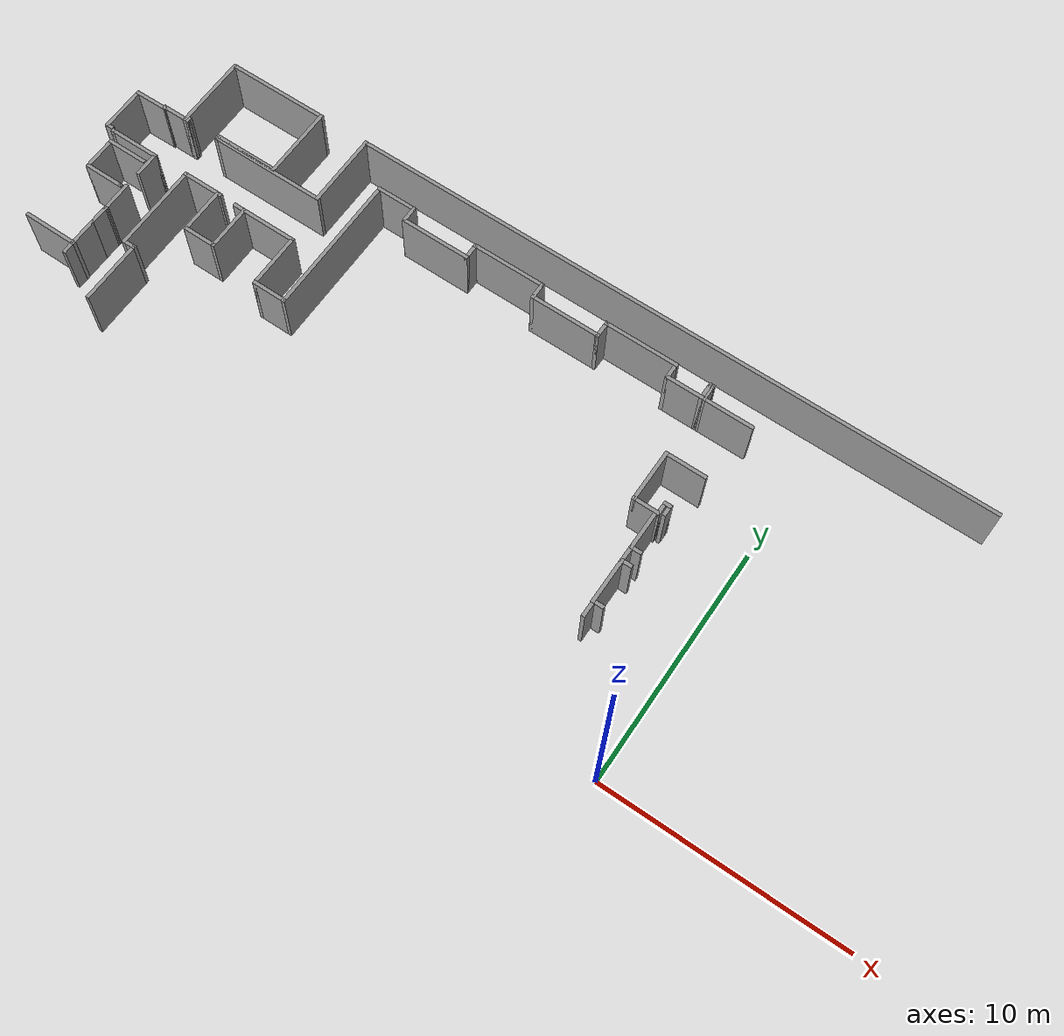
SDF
<sdf version="1.7">
 <model name="NursingHome">
  <pose>-0.88842 0.073115 0 0 -0 0</pose>
  <link name="Wall_100">
   <collision name="Wall_100_Collision">
    <geometry><box><size>27.5 0.15 2.5</size></box></geometry>
    <pose>0 0 1.25 0 -0 0</pose>
   </collision>
   <visual name="Wall_100_Visual">
    <pose>0 0 1.25 0 -0 0</pose>
    <geometry><box><size>27.5 0.15 2.5</size></box></geometry>
    <material>
     <script><uri>file://media/materials/scripts/gazebo.material</uri><name>Gazebo/Grey</name></script>
     <ambient>1 1 1 1</ambient>
    </material>
    <meta><layer>0</layer></meta>
   </visual>
   <pose>-6.18972 15.1854 0 0 -0 3.14159</pose>
  </link>
  <link name="Wall_101">
   <collision name="Wall_101_Collision">
    <geometry><box><size>3.25 0.15 2.5</size></box></geometry>
    <pose>0 0 1.25 0 -0 0</pose>
   </collision>
   <visual name="Wall_101_Visual">
    <pose>0 0 1.25 0 -0 0</pose>
    <geometry><box><size>3.25 0.15 2.5</size></box></geometry>
    <material>
     <script><uri>file://media/materials/scripts/gazebo.material</uri><name>Gazebo/Grey</name></script>
     <ambient>1 1 1 1</ambient>
    </material>
    <meta><layer>0</layer></meta>
   </visual>
   <pose>-19.8647 13.6354 0 0 -0 -1.5708</pose>
  </link>
  <link name="Wall_103">
   <collision name="Wall_103_Collision">
    <geometry><box><size>5 0.15 2.5</size></box></geometry>
    <pose>0 0 1.25 0 -0 0</pose>
   </collision>
   <visual name="Wall_103_Visual">
    <pose>0 0 1.25 0 -0 0</pose>
    <geometry><box><size>5 0.15 2.5</size></box></geometry>
    <material>
     <script><uri>file://media/materials/scripts/gazebo.material</uri><name>Gazebo/Grey</name></script>
     <ambient>1 1 1 1</ambient>
    </material>
    <meta><layer>0</layer></meta>
   </visual>
   <pose>-22.2897 12.0854 0 0 -0 3.14159</pose>
  </link>
  <link name="Wall_105">
   <collision name="Wall_105_Collision">
    <geometry><box><size>0.25 0.15 2.5</size></box></geometry>
    <pose>0 0 1.25 0 -0 0</pose>
   </collision>
   <visual name="Wall_105_Visual">
    <pose>0 0 1.25 0 -0 0</pose>
    <geometry><box><size>0.25 0.15 2.5</size></box></geometry>
    <material>
     <script><uri>file://media/materials/scripts/gazebo.material</uri><name>Gazebo/Grey</name></script>
     <ambient>1 1 1 1</ambient>
    </material>
    <meta><layer>0</layer></meta>
   </visual>
   <pose>-24.7147 12.1354 0 0 -0 1.5708</pose>
  </link>
  <link name="Wall_108">
   <collision name="Wall_108_Collision">
    <geometry><box><size>2.75 0.15 2.5</size></box></geometry>
    <pose>0 0 1.25 0 -0 0</pose>
   </collision>
   <visual name="Wall_108_Visual">
    <pose>0 0 1.25 0 -0 0</pose>
    <geometry><box><size>2.75 0.15 2.5</size></box></geometry>
    <material>
     <script><uri>file://media/materials/scripts/gazebo.material</uri><name>Gazebo/Grey</name></script>
     <ambient>1 1 1 1</ambient>
    </material>
    <meta><layer>0</layer></meta>
   </visual>
   <pose>-23.3314 12.1881 0 0 -0 3.14159</pose>
  </link>
  <link name="Wall_113">
   <collision name="Wall_113_Collision">
    <geometry><box><size>3.15 0.15 2.5</size></box></geometry>
    <pose>0 0 1.25 0 -0 0</pose>
   </collision>
   <visual name="Wall_113_Visual">
    <pose>0 0 1.25 0 -0 0</pose>
    <geometry><box><size>3.15 0.15 2.5</size></box></geometry>
    <material>
     <script><uri>file://media/materials/scripts/gazebo.material</uri><name>Gazebo/Grey</name></script>
     <ambient>1 1 1 1</ambient>
    </material>
    <meta><layer>0</layer></meta>
   </visual>
   <pose>-22.0314 13.6881 0 0 -0 1.5708</pose>
  </link>
  <link name="Wall_115">
   <collision name="Wall_115_Collision">
    <geometry><box><size>4.4 0.15 2.5</size></box></geometry>
    <pose>0 0 1.25 0 -0 0</pose>
   </collision>
   <visual name="Wall_115_Visual">
    <pose>0 0 1.25 0 -0 0</pose>
    <geometry><box><size>4.4 0.15 2.5</size></box></geometry>
    <material>
     <script><uri>file://media/materials/scripts/gazebo.material</uri><name>Gazebo/Grey</name></script>
     <ambient>1 1 1 1</ambient>
    </material>
    <meta><layer>0</layer></meta>
   </visual>
   <pose>-24.1564 15.1881 0 0 -0 3.14159</pose>
  </link>
  <link name="Wall_117">
   <collision name="Wall_117_Collision">
    <geometry><box><size>3.25 0.15 2.5</size></box></geometry>
    <pose>0 0 1.25 0 -0 0</pose>
   </collision>
   <visual name="Wall_117_Visual">
    <pose>0 0 1.25 0 -0 0</pose>
    <geometry><box><size>3.25 0.15 2.5</size></box></geometry>
    <material>
     <script><uri>file://media/materials/scripts/gazebo.material</uri><name>Gazebo/Grey</name></script>
     <ambient>1 1 1 1</ambient>
    </material>
    <meta><layer>0</layer></meta>
   </visual>
   <pose>-26.2814 13.6381 0 0 -0 -1.5708</pose>
  </link>
  <link name="Wall_118">
   <collision name="Wall_118_Collision">
    <geometry><box><size>0.25 0.15 2.5</size></box></geometry>
    <pose>0 0 1.25 0 -0 0</pose>
   </collision>
   <visual name="Wall_118_Visual">
    <pose>0 0 1.25 0 -0 0</pose>
    <geometry><box><size>0.25 0.15 2.5</size></box></geometry>
    <material>
     <script><uri>file://media/materials/scripts/gazebo.material</uri><name>Gazebo/Grey</name></script>
     <ambient>1 1 1 1</ambient>
    </material>
    <meta><layer>0</layer></meta>
   </visual>
   <pose>-26.2314 12.0881 0 0 -0 0</pose>
  </link>
  <link name="Wall_119">
   <collision name="Wall_119_Collision">
    <geometry><box><size>0.25 0.15 2.5</size></box></geometry>
    <pose>0 0 1.25 0 -0 0</pose>
   </collision>
   <visual name="Wall_119_Visual">
    <pose>0 0 1.25 0 -0 0</pose>
    <geometry><box><size>0.25 0.15 2.5</size></box></geometry>
    <material>
     <script><uri>file://media/materials/scripts/gazebo.material</uri><name>Gazebo/Grey</name></script>
     <ambient>1 1 1 1</ambient>
    </material>
    <meta><layer>0</layer></meta>
   </visual>
   <pose>-26.1814 12.1381 0 0 -0 1.5708</pose>
  </link>
  <link name="Wall_121">
   <collision name="Wall_121_Collision">
    <geometry><box><size>1.25 0.15 2.5</size></box></geometry>
    <pose>0 0 1.25 0 -0 0</pose>
   </collision>
   <visual name="Wall_121_Visual">
    <pose>0 0 1.25 0 -0 0</pose>
    <geometry><box><size>1.25 0.15 2.5</size></box></geometry>
    <material>
     <script><uri>file://media/materials/scripts/gazebo.material</uri><name>Gazebo/Grey</name></script>
     <ambient>1 1 1 1</ambient>
    </material>
    <meta><layer>0</layer></meta>
   </visual>
   <pose>-26.7314 12.0881 0 0 -0 3.14159</pose>
  </link>
  <link name="Wall_124">
   <collision name="Wall_124_Collision">
    <geometry><box><size>0.2 0.15 2.5</size></box></geometry>
    <pose>0 0 1.25 0 -0 0</pose>
   </collision>
   <visual name="Wall_124_Visual">
    <pose>0 0 1.25 0 -0 0</pose>
    <geometry><box><size>0.2 0.15 2.5</size></box></geometry>
    <material>
     <script><uri>file://media/materials/scripts/gazebo.material</uri><name>Gazebo/Grey</name></script>
     <ambient>1 1 1 1</ambient>
    </material>
    <meta><layer>0</layer></meta>
   </visual>
   <pose>-27.2814 12.0631 0 0 -0 -1.5708</pose>
  </link>
  <link name="Wall_127">
   <collision name="Wall_127_Collision">
    <geometry><box><size>1.45645 0.15 2.5</size></box></geometry>
    <pose>0 0 1.25 0 -0 0</pose>
   </collision>
   <visual name="Wall_127_Visual">
    <pose>0 0 1.25 0 -0 0</pose>
    <geometry><box><size>1.45645 0.15 2.5</size></box></geometry>
    <material>
     <script><uri>file://media/materials/scripts/gazebo.material</uri><name>Gazebo/Grey</name></script>
     <ambient>1 1 1 1</ambient>
    </material>
    <meta><layer>0</layer></meta>
   </visual>
   <pose>-27.9346 12.0294 0 0 -0 0.013298</pose>
  </link>
  <link name="Wall_129">
   <collision name="Wall_129_Collision">
    <geometry><box><size>2 0.15 2.5</size></box></geometry>
    <pose>0 0 1.25 0 -0 0</pose>
   </collision>
   <visual name="Wall_129_Visual">
    <pose>0 0 1.25 0 -0 0</pose>
    <geometry><box><size>2 0.15 2.5</size></box></geometry>
    <material>
     <script><uri>file://media/materials/scripts/gazebo.material</uri><name>Gazebo/Grey</name></script>
     <ambient>1 1 1 1</ambient>
    </material>
    <meta><layer>0</layer></meta>
   </visual>
   <pose>-28.5878 11.0957 0 0 -0 -1.5708</pose>
  </link>
  <link name="Wall_131">
   <collision name="Wall_131_Collision">
    <geometry><box><size>0.35 0.15 2.5</size></box></geometry>
    <pose>0 0 1.25 0 -0 0</pose>
   </collision>
   <visual name="Wall_131_Visual">
    <pose>0 0 1.25 0 -0 0</pose>
    <geometry><box><size>0.35 0.15 2.5</size></box></geometry>
    <material>
     <script><uri>file://media/materials/scripts/gazebo.material</uri><name>Gazebo/Grey</name></script>
     <ambient>1 1 1 1</ambient>
    </material>
    <meta><layer>0</layer></meta>
   </visual>
   <pose>-28.4878 10.1707 0 0 -0 0</pose>
  </link>
  <link name="Wall_137">
   <collision name="Wall_137_Collision">
    <geometry><box><size>0.15 0.15 2.5</size></box></geometry>
    <pose>0 0 1.25 0 -0 0</pose>
   </collision>
   <visual name="Wall_137_Visual">
    <pose>0 0 1.25 0 -0 0</pose>
    <geometry><box><size>0.15 0.15 2.5</size></box></geometry>
    <material>
     <script><uri>file://media/materials/scripts/gazebo.material</uri><name>Gazebo/Grey</name></script>
     <ambient>1 1 1 1</ambient>
    </material>
    <meta><layer>0</layer></meta>
   </visual>
   <pose>-28.2223 10.0904 0 0 -0 0</pose>
  </link>
  <link name="Wall_140">
   <collision name="Wall_140_Collision">
    <geometry><box><size>2.2 0.15 2.5</size></box></geometry>
    <pose>0 0 1.25 0 -0 0</pose>
   </collision>
   <visual name="Wall_140_Visual">
    <pose>0 0 1.25 0 -0 0</pose>
    <geometry><box><size>2.2 0.15 2.5</size></box></geometry>
    <material>
     <script><uri>file://media/materials/scripts/gazebo.material</uri><name>Gazebo/Grey</name></script>
     <ambient>1 1 1 1</ambient>
    </material>
    <meta><layer>0</layer></meta>
   </visual>
   <pose>-27.1973 10.0904 0 0 -0 0</pose>
  </link>
  <link name="Wall_142">
   <collision name="Wall_142_Collision">
    <geometry><box><size>1.1 0.15 2.5</size></box></geometry>
    <pose>0 0 1.25 0 -0 0</pose>
   </collision>
   <visual name="Wall_142_Visual">
    <pose>0 0 1.25 0 -0 0</pose>
    <geometry><box><size>1.1 0.15 2.5</size></box></geometry>
    <material>
     <script><uri>file://media/materials/scripts/gazebo.material</uri><name>Gazebo/Grey</name></script>
     <ambient>1 1 1 1</ambient>
    </material>
    <meta><layer>0</layer></meta>
   </visual>
   <pose>-26.1723 9.61538 0 0 -0 -1.5708</pose>
  </link>
  <link name="Wall_144">
   <collision name="Wall_144_Collision">
    <geometry><box><size>1.75 0.15 2.5</size></box></geometry>
    <pose>0 0 1.25 0 -0 0</pose>
   </collision>
   <visual name="Wall_144_Visual">
    <pose>0 0 1.25 0 -0 0</pose>
    <geometry><box><size>1.75 0.15 2.5</size></box></geometry>
    <material>
     <script><uri>file://media/materials/scripts/gazebo.material</uri><name>Gazebo/Grey</name></script>
     <ambient>1 1 1 1</ambient>
    </material>
    <meta><layer>0</layer></meta>
   </visual>
   <pose>-27.1777 9.64726 0 0 -0 3.14159</pose>
  </link>
  <link name="Wall_145">
   <collision name="Wall_145_Collision">
    <geometry><box><size>1.5 0.15 2.5</size></box></geometry>
    <pose>0 0 1.25 0 -0 0</pose>
   </collision>
   <visual name="Wall_145_Visual">
    <pose>0 0 1.25 0 -0 0</pose>
    <geometry><box><size>1.5 0.15 2.5</size></box></geometry>
    <material>
     <script><uri>file://media/materials/scripts/gazebo.material</uri><name>Gazebo/Grey</name></script>
     <ambient>1 1 1 1</ambient>
    </material>
    <meta><layer>0</layer></meta>
   </visual>
   <pose>-27.9777 8.97226 0 0 -0 -1.5708</pose>
  </link>
  <link name="Wall_146">
   <collision name="Wall_146_Collision">
    <geometry><box><size>1.75 0.15 2.5</size></box></geometry>
    <pose>0 0 1.25 0 -0 0</pose>
   </collision>
   <visual name="Wall_146_Visual">
    <pose>0 0 1.25 0 -0 0</pose>
    <geometry><box><size>1.75 0.15 2.5</size></box></geometry>
    <material>
     <script><uri>file://media/materials/scripts/gazebo.material</uri><name>Gazebo/Grey</name></script>
     <ambient>1 1 1 1</ambient>
    </material>
    <meta><layer>0</layer></meta>
   </visual>
   <pose>-27.1777 8.29726 0 0 -0 0</pose>
  </link>
  <link name="Wall_149">
   <collision name="Wall_149_Collision">
    <geometry><box><size>1.35 0.15 2.5</size></box></geometry>
    <pose>0 0 1.25 0 -0 0</pose>
   </collision>
   <visual name="Wall_149_Visual">
    <pose>0 0 1.25 0 -0 0</pose>
    <geometry><box><size>1.35 0.15 2.5</size></box></geometry>
    <material>
     <script><uri>file://media/materials/scripts/gazebo.material</uri><name>Gazebo/Grey</name></script>
     <ambient>1 1 1 1</ambient>
    </material>
    <meta><layer>0</layer></meta>
   </visual>
   <pose>-26.181 7.79245 0 0 -0 1.5708</pose>
  </link>
  <link name="Wall_151">
   <collision name="Wall_151_Collision">
    <geometry><box><size>0.16 0.15 2.5</size></box></geometry>
    <pose>0 0 1.25 0 -0 0</pose>
   </collision>
   <visual name="Wall_151_Visual">
    <pose>0 0 1.25 0 -0 0</pose>
    <geometry><box><size>0.16 0.15 2.5</size></box></geometry>
    <material>
     <script><uri>file://media/materials/scripts/gazebo.material</uri><name>Gazebo/Grey</name></script>
     <ambient>1 1 1 1</ambient>
    </material>
    <meta><layer>0</layer></meta>
   </visual>
   <pose>-26.3727 8.29726 0 0 -0 0</pose>
  </link>
  <link name="Wall_153">
   <collision name="Wall_153_Collision">
    <geometry><box><size>1.25 0.15 2.5</size></box></geometry>
    <pose>0 0 1.25 0 -0 0</pose>
   </collision>
   <visual name="Wall_153_Visual">
    <pose>0 0 1.25 0 -0 0</pose>
    <geometry><box><size>1.25 0.15 2.5</size></box></geometry>
    <material>
     <script><uri>file://media/materials/scripts/gazebo.material</uri><name>Gazebo/Grey</name></script>
     <ambient>1 1 1 1</ambient>
    </material>
    <meta><layer>0</layer></meta>
   </visual>
   <pose>-26.1947 5.87 0 0 -0 -1.5708</pose>
  </link>
  <link name="Wall_154">
   <collision name="Wall_154_Collision">
    <geometry><box><size>2.35 0.15 2.5</size></box></geometry>
    <pose>0 0 1.25 0 -0 0</pose>
   </collision>
   <visual name="Wall_154_Visual">
    <pose>0 0 1.25 0 -0 0</pose>
    <geometry><box><size>2.35 0.15 2.5</size></box></geometry>
    <material>
     <script><uri>file://media/materials/scripts/gazebo.material</uri><name>Gazebo/Grey</name></script>
     <ambient>1 1 1 1</ambient>
    </material>
    <meta><layer>0</layer></meta>
   </visual>
   <pose>-27.2947 5.32 0 0 -0 3.14159</pose>
  </link>
  <link name="Wall_161">
   <collision name="Wall_161_Collision">
    <geometry><box><size>0.6 0.15 2.5</size></box></geometry>
    <pose>0 0 1.25 0 -0 0</pose>
   </collision>
   <visual name="Wall_161_Visual">
    <pose>0 0 1.25 0 -0 0</pose>
    <geometry><box><size>0.6 0.15 2.5</size></box></geometry>
    <material>
     <script><uri>file://media/materials/scripts/gazebo.material</uri><name>Gazebo/Grey</name></script>
     <ambient>1 1 1 1</ambient>
    </material>
    <meta><layer>0</layer></meta>
   </visual>
   <pose>-26.1947 5.095 0 0 -0 -1.5708</pose>
  </link>
  <link name="Wall_167">
   <collision name="Wall_167_Collision">
    <geometry><box><size>0.922568 0.15 2.5</size></box></geometry>
    <pose>0 0 1.25 0 -0 0</pose>
   </collision>
   <visual name="Wall_167_Visual">
    <pose>0 0 1.25 0 -0 0</pose>
    <geometry><box><size>0.922568 0.15 2.5</size></box></geometry>
    <material>
     <script><uri>file://media/materials/scripts/gazebo.material</uri><name>Gazebo/Grey</name></script>
     <ambient>1 1 1 1</ambient>
    </material>
    <meta><layer>0</layer></meta>
   </visual>
   <pose>-26.1879 6.80622 0 0 -0 1.55301</pose>
  </link>
  <link name="Wall_251">
   <collision name="Wall_251_Collision">
    <geometry><box><size>2.75 0.15 2.5</size></box></geometry>
    <pose>0 0 1.25 0 -0 0</pose>
   </collision>
   <visual name="Wall_251_Visual">
    <pose>0 0 1.25 0 -0 0</pose>
    <geometry><box><size>2.75 0.15 2.5</size></box></geometry>
    <material>
     <script><uri>file://media/materials/scripts/gazebo.material</uri><name>Gazebo/Grey</name></script>
     <ambient>1 1 1 1</ambient>
    </material>
    <meta><layer>0</layer></meta>
   </visual>
   <pose>-24.2039 5.16824 0 0 -0 1.5708</pose>
  </link>
  <link name="Wall_253">
   <collision name="Wall_253_Collision">
    <geometry><box><size>0.6 0.15 2.5</size></box></geometry>
    <pose>0 0 1.25 0 -0 0</pose>
   </collision>
   <visual name="Wall_253_Visual">
    <pose>0 0 1.25 0 -0 0</pose>
    <geometry><box><size>0.6 0.15 2.5</size></box></geometry>
    <material>
     <script><uri>file://media/materials/scripts/gazebo.material</uri><name>Gazebo/Grey</name></script>
     <ambient>1 1 1 1</ambient>
    </material>
    <meta><layer>0</layer></meta>
   </visual>
   <pose>-24.4289 6.46824 0 0 -0 3.14159</pose>
  </link>
  <link name="Wall_256">
   <collision name="Wall_256_Collision">
    <geometry><box><size>3.8 0.15 2.5</size></box></geometry>
    <pose>0 0 1.25 0 -0 0</pose>
   </collision>
   <visual name="Wall_256_Visual">
    <pose>0 0 1.25 0 -0 0</pose>
    <geometry><box><size>3.8 0.15 2.5</size></box></geometry>
    <material>
     <script><uri>file://media/materials/scripts/gazebo.material</uri><name>Gazebo/Grey</name></script>
     <ambient>1 1 1 1</ambient>
    </material>
    <meta><layer>0</layer></meta>
   </visual>
   <pose>-24.6539 8.29324 0 0 -0 1.5708</pose>
  </link>
  <link name="Wall_258">
   <collision name="Wall_258_Collision">
    <geometry><box><size>1.8 0.15 2.5</size></box></geometry>
    <pose>0 0 1.25 0 -0 0</pose>
   </collision>
   <visual name="Wall_258_Visual">
    <pose>0 0 1.25 0 -0 0</pose>
    <geometry><box><size>1.8 0.15 2.5</size></box></geometry>
    <material>
     <script><uri>file://media/materials/scripts/gazebo.material</uri><name>Gazebo/Grey</name></script>
     <ambient>1 1 1 1</ambient>
    </material>
    <meta><layer>0</layer></meta>
   </visual>
   <pose>-23.8289 10.1182 0 0 -0 0</pose>
  </link>
  <link name="Wall_260">
   <collision name="Wall_260_Collision">
    <geometry><box><size>2.85 0.15 2.5</size></box></geometry>
    <pose>0 0 1.25 0 -0 0</pose>
   </collision>
   <visual name="Wall_260_Visual">
    <pose>0 0 1.25 0 -0 0</pose>
    <geometry><box><size>2.85 0.15 2.5</size></box></geometry>
    <material>
     <script><uri>file://media/materials/scripts/gazebo.material</uri><name>Gazebo/Grey</name></script>
     <ambient>1 1 1 1</ambient>
    </material>
    <meta><layer>0</layer></meta>
   </visual>
   <pose>-20.8791 10.0884 0 0 -0 0</pose>
  </link>
  <link name="Wall_262">
   <collision name="Wall_262_Collision">
    <geometry><box><size>2 0.15 2.5</size></box></geometry>
    <pose>0 0 1.25 0 -0 0</pose>
   </collision>
   <visual name="Wall_262_Visual">
    <pose>0 0 1.25 0 -0 0</pose>
    <geometry><box><size>2 0.15 2.5</size></box></geometry>
    <material>
     <script><uri>file://media/materials/scripts/gazebo.material</uri><name>Gazebo/Grey</name></script>
     <ambient>1 1 1 1</ambient>
    </material>
    <meta><layer>0</layer></meta>
   </visual>
   <pose>-23.1091 9.15342 0 0 -0 1.5708</pose>
  </link>
  <link name="Wall_264">
   <collision name="Wall_264_Collision">
    <geometry><box><size>1.45 0.15 2.5</size></box></geometry>
    <pose>0 0 1.25 0 -0 0</pose>
   </collision>
   <visual name="Wall_264_Visual">
    <pose>0 0 1.25 0 -0 0</pose>
    <geometry><box><size>1.45 0.15 2.5</size></box></geometry>
    <material>
     <script><uri>file://media/materials/scripts/gazebo.material</uri><name>Gazebo/Grey</name></script>
     <ambient>1 1 1 1</ambient>
    </material>
    <meta><layer>0</layer></meta>
   </visual>
   <pose>-22.4591 8.22842 0 0 -0 0</pose>
  </link>
  <link name="Wall_266">
   <collision name="Wall_266_Collision">
    <geometry><box><size>2 0.15 2.5</size></box></geometry>
    <pose>0 0 1.25 0 -0 0</pose>
   </collision>
   <visual name="Wall_266_Visual">
    <pose>0 0 1.25 0 -0 0</pose>
    <geometry><box><size>2 0.15 2.5</size></box></geometry>
    <material>
     <script><uri>file://media/materials/scripts/gazebo.material</uri><name>Gazebo/Grey</name></script>
     <ambient>1 1 1 1</ambient>
    </material>
    <meta><layer>0</layer></meta>
   </visual>
   <pose>-21.8091 9.15342 0 0 -0 1.5708</pose>
  </link>
  <link name="Wall_269">
   <collision name="Wall_269_Collision">
    <geometry><box><size>2.4 0.15 2.5</size></box></geometry>
    <pose>0 0 1.25 0 -0 0</pose>
   </collision>
   <visual name="Wall_269_Visual">
    <pose>0 0 1.25 0 -0 0</pose>
    <geometry><box><size>2.4 0.15 2.5</size></box></geometry>
    <material>
     <script><uri>file://media/materials/scripts/gazebo.material</uri><name>Gazebo/Grey</name></script>
     <ambient>1 1 1 1</ambient>
    </material>
    <meta><layer>0</layer></meta>
   </visual>
   <pose>-19.5291 8.96342 0 0 -0 -1.5708</pose>
  </link>
  <link name="Wall_271">
   <collision name="Wall_271_Collision">
    <geometry><box><size>1.5 0.15 2.5</size></box></geometry>
    <pose>0 0 1.25 0 -0 0</pose>
   </collision>
   <visual name="Wall_271_Visual">
    <pose>0 0 1.25 0 -0 0</pose>
    <geometry><box><size>1.5 0.15 2.5</size></box></geometry>
    <material>
     <script><uri>file://media/materials/scripts/gazebo.material</uri><name>Gazebo/Grey</name></script>
     <ambient>1 1 1 1</ambient>
    </material>
    <meta><layer>0</layer></meta>
   </visual>
   <pose>-18.8541 7.83842 0 0 -0 0</pose>
  </link>
  <link name="Wall_273">
   <collision name="Wall_273_Collision">
    <geometry><box><size>6.1 0.15 2.5</size></box></geometry>
    <pose>0 0 1.25 0 -0 0</pose>
   </collision>
   <visual name="Wall_273_Visual">
    <pose>0 0 1.25 0 -0 0</pose>
    <geometry><box><size>6.1 0.15 2.5</size></box></geometry>
    <material>
     <script><uri>file://media/materials/scripts/gazebo.material</uri><name>Gazebo/Grey</name></script>
     <ambient>1 1 1 1</ambient>
    </material>
    <meta><layer>0</layer></meta>
   </visual>
   <pose>-18.1791 10.8134 0 0 -0 1.5708</pose>
  </link>
  <link name="Wall_275">
   <collision name="Wall_275_Collision">
    <geometry><box><size>1.75 0.15 2.5</size></box></geometry>
    <pose>0 0 1.25 0 -0 0</pose>
   </collision>
   <visual name="Wall_275_Visual">
    <pose>0 0 1.25 0 -0 0</pose>
    <geometry><box><size>1.75 0.15 2.5</size></box></geometry>
    <material>
     <script><uri>file://media/materials/scripts/gazebo.material</uri><name>Gazebo/Grey</name></script>
     <ambient>1 1 1 1</ambient>
    </material>
    <meta><layer>0</layer></meta>
   </visual>
   <pose>-17.3791 13.7884 0 0 -0 0</pose>
  </link>
  <link name="Wall_276">
   <collision name="Wall_276_Collision">
    <geometry><box><size>0.75 0.15 2.5</size></box></geometry>
    <pose>0 0 1.25 0 -0 0</pose>
   </collision>
   <visual name="Wall_276_Visual">
    <pose>0 0 1.25 0 -0 0</pose>
    <geometry><box><size>0.75 0.15 2.5</size></box></geometry>
    <material>
     <script><uri>file://media/materials/scripts/gazebo.material</uri><name>Gazebo/Grey</name></script>
     <ambient>1 1 1 1</ambient>
    </material>
    <meta><layer>0</layer></meta>
   </visual>
   <pose>-16.5791 13.4884 0 0 -0 -1.5708</pose>
  </link>
  <link name="Wall_277">
   <collision name="Wall_277_Collision">
    <geometry><box><size>3 0.15 2.5</size></box></geometry>
    <pose>0 0 1.25 0 -0 0</pose>
   </collision>
   <visual name="Wall_277_Visual">
    <pose>0 0 1.25 0 -0 0</pose>
    <geometry><box><size>3 0.15 2.5</size></box></geometry>
    <material>
     <script><uri>file://media/materials/scripts/gazebo.material</uri><name>Gazebo/Grey</name></script>
     <ambient>1 1 1 1</ambient>
    </material>
    <meta><layer>0</layer></meta>
   </visual>
   <pose>-15.1541 13.1884 0 0 -0 0</pose>
  </link>
  <link name="Wall_278">
   <collision name="Wall_278_Collision">
    <geometry><box><size>0.75 0.15 2.5</size></box></geometry>
    <pose>0 0 1.25 0 -0 0</pose>
   </collision>
   <visual name="Wall_278_Visual">
    <pose>0 0 1.25 0 -0 0</pose>
    <geometry><box><size>0.75 0.15 2.5</size></box></geometry>
    <material>
     <script><uri>file://media/materials/scripts/gazebo.material</uri><name>Gazebo/Grey</name></script>
     <ambient>1 1 1 1</ambient>
    </material>
    <meta><layer>0</layer></meta>
   </visual>
   <pose>-13.7291 13.4884 0 0 -0 1.5708</pose>
  </link>
  <link name="Wall_281">
   <collision name="Wall_281_Collision">
    <geometry><box><size>3.15 0.15 2.5</size></box></geometry>
    <pose>0 0 1.25 0 -0 0</pose>
   </collision>
   <visual name="Wall_281_Visual">
    <pose>0 0 1.25 0 -0 0</pose>
    <geometry><box><size>3.15 0.15 2.5</size></box></geometry>
    <material>
     <script><uri>file://media/materials/scripts/gazebo.material</uri><name>Gazebo/Grey</name></script>
     <ambient>1 1 1 1</ambient>
    </material>
    <meta><layer>0</layer></meta>
   </visual>
   <pose>-12.2291 13.7884 0 0 -0 0</pose>
  </link>
  <link name="Wall_283">
   <collision name="Wall_283_Collision">
    <geometry><box><size>0.75 0.15 2.5</size></box></geometry>
    <pose>0 0 1.25 0 -0 0</pose>
   </collision>
   <visual name="Wall_283_Visual">
    <pose>0 0 1.25 0 -0 0</pose>
    <geometry><box><size>0.75 0.15 2.5</size></box></geometry>
    <material>
     <script><uri>file://media/materials/scripts/gazebo.material</uri><name>Gazebo/Grey</name></script>
     <ambient>1 1 1 1</ambient>
    </material>
    <meta><layer>0</layer></meta>
   </visual>
   <pose>-10.7291 13.4884 0 0 -0 -1.5708</pose>
  </link>
  <link name="Wall_284">
   <collision name="Wall_284_Collision">
    <geometry><box><size>3 0.15 2.5</size></box></geometry>
    <pose>0 0 1.25 0 -0 0</pose>
   </collision>
   <visual name="Wall_284_Visual">
    <pose>0 0 1.25 0 -0 0</pose>
    <geometry><box><size>3 0.15 2.5</size></box></geometry>
    <material>
     <script><uri>file://media/materials/scripts/gazebo.material</uri><name>Gazebo/Grey</name></script>
     <ambient>1 1 1 1</ambient>
    </material>
    <meta><layer>0</layer></meta>
   </visual>
   <pose>-9.30406 13.1884 0 0 -0 0</pose>
  </link>
  <link name="Wall_285">
   <collision name="Wall_285_Collision">
    <geometry><box><size>0.75 0.15 2.5</size></box></geometry>
    <pose>0 0 1.25 0 -0 0</pose>
   </collision>
   <visual name="Wall_285_Visual">
    <pose>0 0 1.25 0 -0 0</pose>
    <geometry><box><size>0.75 0.15 2.5</size></box></geometry>
    <material>
     <script><uri>file://media/materials/scripts/gazebo.material</uri><name>Gazebo/Grey</name></script>
     <ambient>1 1 1 1</ambient>
    </material>
    <meta><layer>0</layer></meta>
   </visual>
   <pose>-7.87906 13.4884 0 0 -0 1.5708</pose>
  </link>
  <link name="Wall_286">
   <collision name="Wall_286_Collision">
    <geometry><box><size>3.15 0.15 2.5</size></box></geometry>
    <pose>0 0 1.25 0 -0 0</pose>
   </collision>
   <visual name="Wall_286_Visual">
    <pose>0 0 1.25 0 -0 0</pose>
    <geometry><box><size>3.15 0.15 2.5</size></box></geometry>
    <material>
     <script><uri>file://media/materials/scripts/gazebo.material</uri><name>Gazebo/Grey</name></script>
     <ambient>1 1 1 1</ambient>
    </material>
    <meta><layer>0</layer></meta>
   </visual>
   <pose>-6.37906 13.7884 0 0 -0 0</pose>
  </link>
  <link name="Wall_288">
   <collision name="Wall_288_Collision">
    <geometry><box><size>0.75 0.15 2.5</size></box></geometry>
    <pose>0 0 1.25 0 -0 0</pose>
   </collision>
   <visual name="Wall_288_Visual">
    <pose>0 0 1.25 0 -0 0</pose>
    <geometry><box><size>0.75 0.15 2.5</size></box></geometry>
    <material>
     <script><uri>file://media/materials/scripts/gazebo.material</uri><name>Gazebo/Grey</name></script>
     <ambient>1 1 1 1</ambient>
    </material>
    <meta><layer>0</layer></meta>
   </visual>
   <pose>-4.87906 13.4884 0 0 -0 -1.5708</pose>
  </link>
  <link name="Wall_289">
   <collision name="Wall_289_Collision">
    <geometry><box><size>1.6 0.15 2.5</size></box></geometry>
    <pose>0 0 1.25 0 -0 0</pose>
   </collision>
   <visual name="Wall_289_Visual">
    <pose>0 0 1.25 0 -0 0</pose>
    <geometry><box><size>1.6 0.15 2.5</size></box></geometry>
    <material>
     <script><uri>file://media/materials/scripts/gazebo.material</uri><name>Gazebo/Grey</name></script>
     <ambient>1 1 1 1</ambient>
    </material>
    <meta><layer>0</layer></meta>
   </visual>
   <pose>-4.15406 13.1884 0 0 -0 0</pose>
  </link>
  <link name="Wall_291">
   <collision name="Wall_291_Collision">
    <geometry><box><size>0.75 0.15 2.5</size></box></geometry>
    <pose>0 0 1.25 0 -0 0</pose>
   </collision>
   <visual name="Wall_291_Visual">
    <pose>0 0 1.25 0 -0 0</pose>
    <geometry><box><size>0.75 0.15 2.5</size></box></geometry>
    <material>
     <script><uri>file://media/materials/scripts/gazebo.material</uri><name>Gazebo/Grey</name></script>
     <ambient>1 1 1 1</ambient>
    </material>
    <meta><layer>0</layer></meta>
   </visual>
   <pose>-3.42906 13.4884 0 0 -0 1.5708</pose>
  </link>
  <link name="Wall_293">
   <collision name="Wall_293_Collision">
    <geometry><box><size>0.25 0.15 2.5</size></box></geometry>
    <pose>0 0 1.25 0 -0 0</pose>
   </collision>
   <visual name="Wall_293_Visual">
    <pose>0 0 1.25 0 -0 0</pose>
    <geometry><box><size>0.25 0.15 2.5</size></box></geometry>
    <material>
     <script><uri>file://media/materials/scripts/gazebo.material</uri><name>Gazebo/Grey</name></script>
     <ambient>1 1 1 1</ambient>
    </material>
    <meta><layer>0</layer></meta>
   </visual>
   <pose>-3.37906 13.7884 0 0 -0 0</pose>
  </link>
  <link name="Wall_294">
   <collision name="Wall_294_Collision">
    <geometry><box><size>0.75 0.15 2.5</size></box></geometry>
    <pose>0 0 1.25 0 -0 0</pose>
   </collision>
   <visual name="Wall_294_Visual">
    <pose>0 0 1.25 0 -0 0</pose>
    <geometry><box><size>0.75 0.15 2.5</size></box></geometry>
    <material>
     <script><uri>file://media/materials/scripts/gazebo.material</uri><name>Gazebo/Grey</name></script>
     <ambient>1 1 1 1</ambient>
    </material>
    <meta><layer>0</layer></meta>
   </visual>
   <pose>-3.32906 13.4884 0 0 -0 -1.5708</pose>
  </link>
  <link name="Wall_295">
   <collision name="Wall_295_Collision">
    <geometry><box><size>2.15 0.15 2.5</size></box></geometry>
    <pose>0 0 1.25 0 -0 0</pose>
   </collision>
   <visual name="Wall_295_Visual">
    <pose>0 0 1.25 0 -0 0</pose>
    <geometry><box><size>2.15 0.15 2.5</size></box></geometry>
    <material>
     <script><uri>file://media/materials/scripts/gazebo.material</uri><name>Gazebo/Grey</name></script>
     <ambient>1 1 1 1</ambient>
    </material>
    <meta><layer>0</layer></meta>
   </visual>
   <pose>-2.32906 13.1884 0 0 -0 0</pose>
  </link>
  <link name="Wall_303">
   <collision name="Wall_303_Collision">
    <geometry><box><size>1.75 0.15 2.5</size></box></geometry>
    <pose>0 0 1.25 0 -0 0</pose>
   </collision>
   <visual name="Wall_303_Visual">
    <pose>0 0 1.25 0 -0 0</pose>
    <geometry><box><size>1.75 0.15 2.5</size></box></geometry>
    <material>
     <script><uri>file://media/materials/scripts/gazebo.material</uri><name>Gazebo/Grey</name></script>
     <ambient>1 1 1 1</ambient>
    </material>
    <meta><layer>0</layer></meta>
   </visual>
   <pose>-2.47906 10.5884 0 0 -0 3.14159</pose>
  </link>
  <link name="Wall_304">
   <collision name="Wall_304_Collision">
    <geometry><box><size>2.25 0.15 2.5</size></box></geometry>
    <pose>0 0 1.25 0 -0 0</pose>
   </collision>
   <visual name="Wall_304_Visual">
    <pose>0 0 1.25 0 -0 0</pose>
    <geometry><box><size>2.25 0.15 2.5</size></box></geometry>
    <material>
     <script><uri>file://media/materials/scripts/gazebo.material</uri><name>Gazebo/Grey</name></script>
     <ambient>1 1 1 1</ambient>
    </material>
    <meta><layer>0</layer></meta>
   </visual>
   <pose>-3.27906 9.53842 0 0 -0 -1.5708</pose>
  </link>
  <link name="Wall_305">
   <collision name="Wall_305_Collision">
    <geometry><box><size>1.15 0.15 2.5</size></box></geometry>
    <pose>0 0 1.25 0 -0 0</pose>
   </collision>
   <visual name="Wall_305_Visual">
    <pose>0 0 1.25 0 -0 0</pose>
    <geometry><box><size>1.15 0.15 2.5</size></box></geometry>
    <material>
     <script><uri>file://media/materials/scripts/gazebo.material</uri><name>Gazebo/Grey</name></script>
     <ambient>1 1 1 1</ambient>
    </material>
    <meta><layer>0</layer></meta>
   </visual>
   <pose>-2.77906 8.48842 0 0 -0 0</pose>
  </link>
  <link name="Wall_307">
   <collision name="Wall_307_Collision">
    <geometry><box><size>0.6 0.15 2.5</size></box></geometry>
    <pose>0 0 1.25 0 -0 0</pose>
   </collision>
   <visual name="Wall_307_Visual">
    <pose>0 0 1.25 0 -0 0</pose>
    <geometry><box><size>0.6 0.15 2.5</size></box></geometry>
    <material>
     <script><uri>file://media/materials/scripts/gazebo.material</uri><name>Gazebo/Grey</name></script>
     <ambient>1 1 1 1</ambient>
    </material>
    <meta><layer>0</layer></meta>
   </visual>
   <pose>-2.27906 8.71342 0 0 -0 1.5708</pose>
  </link>
  <link name="Wall_309">
   <collision name="Wall_309_Collision">
    <geometry><box><size>0.35 0.15 2.5</size></box></geometry>
    <pose>0 0 1.25 0 -0 0</pose>
   </collision>
   <visual name="Wall_309_Visual">
    <pose>0 0 1.25 0 -0 0</pose>
    <geometry><box><size>0.35 0.15 2.5</size></box></geometry>
    <material>
     <script><uri>file://media/materials/scripts/gazebo.material</uri><name>Gazebo/Grey</name></script>
     <ambient>1 1 1 1</ambient>
    </material>
    <meta><layer>0</layer></meta>
   </visual>
   <pose>-2.17906 8.93842 0 0 -0 0</pose>
  </link>
  <link name="Wall_314">
   <collision name="Wall_314_Collision">
    <geometry><box><size>0.5 0.15 2.5</size></box></geometry>
    <pose>0 0 1.25 0 -0 0</pose>
   </collision>
   <visual name="Wall_314_Visual">
    <pose>0 0 1.25 0 -0 0</pose>
    <geometry><box><size>0.5 0.15 2.5</size></box></geometry>
    <material>
     <script><uri>file://media/materials/scripts/gazebo.material</uri><name>Gazebo/Grey</name></script>
     <ambient>1 1 1 1</ambient>
    </material>
    <meta><layer>0</layer></meta>
   </visual>
   <pose>-2.07906 8.76342 0 0 -0 -1.5708</pose>
  </link>
  <link name="Wall_327">
   <collision name="Wall_327_Collision">
    <geometry><box><size>0.5 0.15 2.5</size></box></geometry>
    <pose>0 0 1.25 0 -0 0</pose>
   </collision>
   <visual name="Wall_327_Visual">
    <pose>0 0 1.25 0 -0 0</pose>
    <geometry><box><size>0.5 0.15 2.5</size></box></geometry>
    <material>
     <script><uri>file://media/materials/scripts/gazebo.material</uri><name>Gazebo/Grey</name></script>
     <ambient>1 1 1 1</ambient>
    </material>
    <meta><layer>0</layer></meta>
   </visual>
   <pose>-2.18796 6.89025 0 0 -0 3.14159</pose>
  </link>
  <link name="Wall_328">
   <collision name="Wall_328_Collision">
    <geometry><box><size>0.75 0.15 2.5</size></box></geometry>
    <pose>0 0 1.25 0 -0 0</pose>
   </collision>
   <visual name="Wall_328_Visual">
    <pose>0 0 1.25 0 -0 0</pose>
    <geometry><box><size>0.75 0.15 2.5</size></box></geometry>
    <material>
     <script><uri>file://media/materials/scripts/gazebo.material</uri><name>Gazebo/Grey</name></script>
     <ambient>1 1 1 1</ambient>
    </material>
    <meta><layer>0</layer></meta>
   </visual>
   <pose>-2.36296 6.59025 0 0 -0 -1.5708</pose>
  </link>
  <link name="Wall_329">
   <collision name="Wall_329_Collision">
    <geometry><box><size>0.5 0.15 2.5</size></box></geometry>
    <pose>0 0 1.25 0 -0 0</pose>
   </collision>
   <visual name="Wall_329_Visual">
    <pose>0 0 1.25 0 -0 0</pose>
    <geometry><box><size>0.5 0.15 2.5</size></box></geometry>
    <material>
     <script><uri>file://media/materials/scripts/gazebo.material</uri><name>Gazebo/Grey</name></script>
     <ambient>1 1 1 1</ambient>
    </material>
    <meta><layer>0</layer></meta>
   </visual>
   <pose>-2.18796 6.29026 0 0 -0 0</pose>
  </link>
  <link name="Wall_335">
   <collision name="Wall_335_Collision">
    <geometry><box><size>0.75 0.15 2.5</size></box></geometry>
    <pose>0 0 1.25 0 -0 0</pose>
   </collision>
   <visual name="Wall_335_Visual">
    <pose>0 0 1.25 0 -0 0</pose>
    <geometry><box><size>0.75 0.15 2.5</size></box></geometry>
    <material>
     <script><uri>file://media/materials/scripts/gazebo.material</uri><name>Gazebo/Grey</name></script>
     <ambient>1 1 1 1</ambient>
    </material>
    <meta><layer>0</layer></meta>
   </visual>
   <pose>-2.34255 4.19834 0 0 -0 -1.5708</pose>
  </link>
  <link name="Wall_338">
   <collision name="Wall_338_Collision">
    <geometry><box><size>0.5 0.15 2.5</size></box></geometry>
    <pose>0 0 1.25 0 -0 0</pose>
   </collision>
   <visual name="Wall_338_Visual">
    <pose>0 0 1.25 0 -0 0</pose>
    <geometry><box><size>0.5 0.15 2.5</size></box></geometry>
    <material>
     <script><uri>file://media/materials/scripts/gazebo.material</uri><name>Gazebo/Grey</name></script>
     <ambient>1 1 1 1</ambient>
    </material>
    <meta><layer>0</layer></meta>
   </visual>
   <pose>-2.16755 4.49834 0 0 -0 3.14159</pose>
  </link>
  <link name="Wall_344">
   <collision name="Wall_344_Collision">
    <geometry><box><size>1.75 0.15 2.5</size></box></geometry>
    <pose>0 0 1.25 0 -0 0</pose>
   </collision>
   <visual name="Wall_344_Visual">
    <pose>0 0 1.25 0 -0 0</pose>
    <geometry><box><size>1.75 0.15 2.5</size></box></geometry>
    <material>
     <script><uri>file://media/materials/scripts/gazebo.material</uri><name>Gazebo/Grey</name></script>
     <ambient>1 1 1 1</ambient>
    </material>
    <meta><layer>0</layer></meta>
   </visual>
   <pose>-2.36296 7.69025 0 0 -0 1.5708</pose>
  </link>
  <link name="Wall_346">
   <collision name="Wall_346_Collision">
    <geometry><box><size>1.95 0.15 2.5</size></box></geometry>
    <pose>0 0 1.25 0 -0 0</pose>
   </collision>
   <visual name="Wall_346_Visual">
    <pose>0 0 1.25 0 -0 0</pose>
    <geometry><box><size>1.95 0.15 2.5</size></box></geometry>
    <material>
     <script><uri>file://media/materials/scripts/gazebo.material</uri><name>Gazebo/Grey</name></script>
     <ambient>1 1 1 1</ambient>
    </material>
    <meta><layer>0</layer></meta>
   </visual>
   <pose>-2.36296 5.39025 0 0 -0 -1.5708</pose>
  </link>
  <static>1</static>
 </model>
</sdf>
